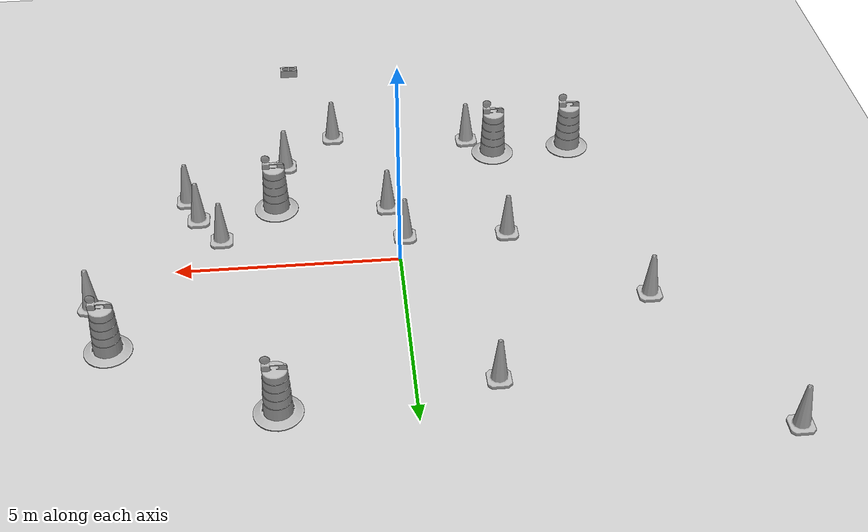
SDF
<sdf version="1.7">
 <world name="default">
  <light name="sun" type="directional">
   <pose>0 0 10 0 -0 0</pose>
   <diffuse>0.8 0.8 0.8 1</diffuse>
   <specular>0.2 0.2 0.2 1</specular>
   <attenuation>
    <range>1000</range>
    <constant>0.9</constant>
    <linear>0.01</linear>
    <quadratic>0.001</quadratic>
   </attenuation>
   <direction>-0.5 0.1 -0.9</direction>
   <spot><inner_angle>0</inner_angle><outer_angle>0</outer_angle><falloff>0</falloff></spot>
  </light>
  <model name="ground_plane">
   <static>1</static>
   <link name="link">
    <collision name="collision">
     <geometry><plane><normal>0 0 1</normal><size>100 100</size></plane></geometry>
     <surface>
      <contact><collide_bitmask>65535</collide_bitmask></contact>
      <friction><ode><mu>100</mu><mu2>50</mu2></ode></friction>
     </surface>
    </collision>
    <visual name="visual">
     <cast_shadows>0</cast_shadows>
     <geometry><plane><normal>0 0 1</normal><size>100 100</size></plane></geometry>
     <material>
      <script><uri>file://media/materials/scripts/gazebo.material</uri><name>Gazebo/Grey</name></script>
     </material>
    </visual>
   </link>
  </model>
  <gravity>0 0 -9.8</gravity>
  <magnetic_field>6e-06 2.3e-05 -4.2e-05</magnetic_field>
  <atmosphere type="adiabatic"/>
  <physics type="ode">
   <max_step_size>0.001</max_step_size>
   <real_time_factor>1</real_time_factor>
   <real_time_update_rate>1000</real_time_update_rate>
  </physics>
  <scene><ambient>0.4 0.4 0.4 1</ambient><background>0.7 0.7 0.7 1</background><shadows>1</shadows></scene>
  <audio><device>default</device></audio>
  <spherical_coordinates>
   <surface_model>EARTH_WGS84</surface_model>
   <latitude_deg>0</latitude_deg>
   <longitude_deg>0</longitude_deg>
   <elevation>0</elevation>
   <heading_deg>0</heading_deg>
  </spherical_coordinates>
  <model name="Construction Cone">
   <link name="link">
    <collision name="collision">
     <geometry>
      <mesh><scale>10 10 10</scale><uri>model://construction_cone/meshes/construction_cone.dae</uri></mesh>
     </geometry>
    </collision>
    <visual name="visual">
     <geometry>
      <mesh><scale>10 10 10</scale><uri>model://construction_cone/meshes/construction_cone.dae</uri></mesh>
     </geometry>
    </visual>
    <inertial>
     <inertia><ixx>1</ixx><ixy>0</ixy><ixz>0</ixz><iyy>1</iyy><iyz>0</iyz><izz>1</izz></inertia>
     <mass>1</mass>
    </inertial>
   </link>
   <pose>0.149287 -1.90198 -0 0 -0 0</pose>
  </model>
  <model name="Construction Barrel">
   <link name="link">
    <inertial>
     <pose>0 0 0.4 0 -0 0</pose>
     <mass>500</mass>
     <inertia><ixx>51.2096</ixx><iyy>51.2096</iyy><izz>25</izz><ixy>0</ixy><ixz>0</ixz><iyz>0</iyz></inertia>
    </inertial>
    <collision name="collision">
     <geometry><mesh><uri>model://construction_barrel/meshes/construction_barrel.dae</uri></mesh></geometry>
    </collision>
    <visual name="visual">
     <geometry><mesh><uri>model://construction_barrel/meshes/construction_barrel.dae</uri></mesh></geometry>
    </visual>
   </link>
   <pose>2.74646 -2.11172 -2e-06 4e-06 7e-06 -2.7e-05</pose>
  </model>
  <model name="cinder_block">
   <link name="link">
    <inertial>
     <pose>0 0 0.1016 0 -0 0</pose>
     <mass>5</mass>
     <inertia>
      <ixx>0.028705</ixx>
      <ixy>0</ixy>
      <iyy>0.073708</iyy>
      <ixz>0</ixz>
      <iyz>0</iyz>
      <izz>0.06908</izz>
     </inertia>
    </inertial>
    <visual name="visual">
     <geometry><mesh><uri>model://cinder_block/meshes/cinder_block.dae</uri></mesh></geometry>
    </visual>
    <collision name="left">
     <pose>0 -0.08465 0.1016 0 -0 0</pose>
     <geometry><box><size>0.43495 0.0339 0.2032</size></box></geometry>
     <surface>
      <contact><ode><max_vel>0.1</max_vel><min_depth>0.001</min_depth></ode></contact>
      <friction><ode><mu>1</mu><mu2>1</mu2></ode></friction>
     </surface>
    </collision>
    <collision name="right">
     <pose>0 0.08465 0.1016 0 -0 0</pose>
     <geometry><box><size>0.43495 0.0339 0.2032</size></box></geometry>
     <surface>
      <contact><ode><max_vel>0.1</max_vel><min_depth>0.001</min_depth></ode></contact>
      <friction><ode><mu>1</mu><mu2>1</mu2></ode></friction>
     </surface>
    </collision>
    <collision name="front">
     <pose>0.18625 0 0.1016 0 -0 0</pose>
     <geometry><box><size>0.0339 0.1354 0.203</size></box></geometry>
     <surface>
      <contact><ode><max_vel>0.1</max_vel><min_depth>0.001</min_depth></ode></contact>
      <friction><ode><mu>1</mu><mu2>1</mu2></ode></friction>
     </surface>
    </collision>
    <collision name="middle">
     <pose>0 0 0.1016 0 -0 0</pose>
     <geometry><box><size>0.0339 0.1354 0.203</size></box></geometry>
     <surface>
      <contact><ode><max_vel>0.1</max_vel><min_depth>0.001</min_depth></ode></contact>
      <friction><ode><mu>1</mu><mu2>1</mu2></ode></friction>
     </surface>
    </collision>
    <collision name="back">
     <pose>-0.18625 0 0.1016 0 -0 0</pose>
     <geometry><box><size>0.0339 0.1354 0.203</size></box></geometry>
     <surface>
      <contact><ode><max_vel>0.1</max_vel><min_depth>0.001</min_depth></ode></contact>
      <friction><ode><mu>1</mu><mu2>1</mu2></ode></friction>
     </surface>
    </collision>
   </link>
   <pose>2.37406 -8.00537 -6e-06 -1e-06 2.8e-05 -0</pose>
  </model>
  <model name="Construction Cone_0">
   <link name="link">
    <collision name="collision">
     <geometry>
      <mesh><scale>10 10 10</scale><uri>model://construction_cone/meshes/construction_cone.dae</uri></mesh>
     </geometry>
    </collision>
    <visual name="visual">
     <geometry>
      <mesh><scale>10 10 10</scale><uri>model://construction_cone/meshes/construction_cone.dae</uri></mesh>
     </geometry>
    </visual>
    <inertial>
     <inertia><ixx>1</ixx><ixy>0</ixy><ixz>0</ixz><iyy>1</iyy><iyz>0</iyz><izz>1</izz></inertia>
     <mass>1</mass>
    </inertial>
   </link>
   <pose>-7.41149 5.84205 -0 0 -1e-06 0</pose>
  </model>
  <model name="Construction Barrel_0">
   <link name="link">
    <inertial>
     <pose>0 0 0.4 0 -0 0</pose>
     <mass>500</mass>
     <inertia><ixx>51.2096</ixx><iyy>51.2096</iyy><izz>25</izz><ixy>0</ixy><ixz>0</ixz><iyz>0</iyz></inertia>
    </inertial>
    <collision name="collision">
     <geometry><mesh><uri>model://construction_barrel/meshes/construction_barrel.dae</uri></mesh></geometry>
    </collision>
    <visual name="visual">
     <geometry><mesh><uri>model://construction_barrel/meshes/construction_barrel.dae</uri></mesh></geometry>
    </visual>
   </link>
   <pose>2.76438 4.52679 -2e-06 6e-06 -3e-06 0.007486</pose>
  </model>
  <model name="Construction Cone_1">
   <link name="link">
    <collision name="collision">
     <geometry>
      <mesh><scale>10 10 10</scale><uri>model://construction_cone/meshes/construction_cone.dae</uri></mesh>
     </geometry>
    </collision>
    <visual name="visual">
     <geometry>
      <mesh><scale>10 10 10</scale><uri>model://construction_cone/meshes/construction_cone.dae</uri></mesh>
     </geometry>
    </visual>
    <inertial>
     <inertia><ixx>1</ixx><ixy>0</ixy><ixz>0</ixz><iyy>1</iyy><iyz>0</iyz><izz>1</izz></inertia>
     <mass>1</mass>
    </inertial>
   </link>
   <pose>-2.51289 -0.682225 -0 0 -1e-06 0</pose>
  </model>
  <model name="Construction Barrel_1">
   <link name="link">
    <inertial>
     <pose>0 0 0.4 0 -0 0</pose>
     <mass>500</mass>
     <inertia><ixx>51.2096</ixx><iyy>51.2096</iyy><izz>25</izz><ixy>0</ixy><ixz>0</ixz><iyz>0</iyz></inertia>
    </inertial>
    <collision name="collision">
     <geometry><mesh><uri>model://construction_barrel/meshes/construction_barrel.dae</uri></mesh></geometry>
    </collision>
    <visual name="visual">
     <geometry><mesh><uri>model://construction_barrel/meshes/construction_barrel.dae</uri></mesh></geometry>
    </visual>
   </link>
   <pose>-2.59454 -3.92508 -0.000972 8e-06 8e-06 0.000153</pose>
  </model>
  <model name="Construction Barrel_2">
   <link name="link">
    <inertial>
     <pose>0 0 0.4 0 -0 0</pose>
     <mass>500</mass>
     <inertia><ixx>51.2096</ixx><iyy>51.2096</iyy><izz>25</izz><ixy>0</ixy><ixz>0</ixz><iyz>0</iyz></inertia>
    </inertial>
    <collision name="collision">
     <geometry><mesh><uri>model://construction_barrel/meshes/construction_barrel.dae</uri></mesh></geometry>
    </collision>
    <visual name="visual">
     <geometry><mesh><uri>model://construction_barrel/meshes/construction_barrel.dae</uri></mesh></geometry>
    </visual>
   </link>
   <pose>-4.47587 -4.03714 -4e-06 -3e-06 -1e-05 -2.2e-05</pose>
  </model>
  <model name="Construction Barrel_3">
   <link name="link">
    <inertial>
     <pose>0 0 0.4 0 -0 0</pose>
     <mass>500</mass>
     <inertia><ixx>51.2096</ixx><iyy>51.2096</iyy><izz>25</izz><ixy>0</ixy><ixz>0</ixz><iyz>0</iyz></inertia>
    </inertial>
    <collision name="collision">
     <geometry><mesh><uri>model://construction_barrel/meshes/construction_barrel.dae</uri></mesh></geometry>
    </collision>
    <visual name="visual">
     <geometry><mesh><uri>model://construction_barrel/meshes/construction_barrel.dae</uri></mesh></geometry>
    </visual>
   </link>
   <pose>6.26986 2.42902 0 0 0 -1.4e-05</pose>
  </model>
  <model name="Construction Cone_clone">
   <link name="link">
    <collision name="collision">
     <geometry>
      <mesh><scale>10 10 10</scale><uri>model://construction_cone/meshes/construction_cone.dae</uri></mesh>
     </geometry>
    </collision>
    <visual name="visual">
     <geometry>
      <mesh><scale>10 10 10</scale><uri>model://construction_cone/meshes/construction_cone.dae</uri></mesh>
     </geometry>
    </visual>
    <inertial>
     <inertia><ixx>1</ixx><ixy>0</ixy><ixz>0</ixz><iyy>1</iyy><iyz>0</iyz><izz>1</izz></inertia>
     <mass>1</mass>
    </inertial>
   </link>
   <pose>4 -1 -1e-05 -1e-06 0 0</pose>
  </model>
  <model name="Construction Cone_clone_0">
   <link name="link">
    <collision name="collision">
     <geometry>
      <mesh><scale>10 10 10</scale><uri>model://construction_cone/meshes/construction_cone.dae</uri></mesh>
     </geometry>
    </collision>
    <visual name="visual">
     <geometry>
      <mesh><scale>10 10 10</scale><uri>model://construction_cone/meshes/construction_cone.dae</uri></mesh>
     </geometry>
    </visual>
    <inertial>
     <inertia><ixx>1</ixx><ixy>0</ixy><ixz>0</ixz><iyy>1</iyy><iyz>0</iyz><izz>1</izz></inertia>
     <mass>1</mass>
    </inertial>
   </link>
   <pose>-1.70003 4.02765 -0 0 -0 0</pose>
  </model>
  <model name="Construction Cone_clone_1">
   <link name="link">
    <collision name="collision">
     <geometry>
      <mesh><scale>10 10 10</scale><uri>model://construction_cone/meshes/construction_cone.dae</uri></mesh>
     </geometry>
    </collision>
    <visual name="visual">
     <geometry>
      <mesh><scale>10 10 10</scale><uri>model://construction_cone/meshes/construction_cone.dae</uri></mesh>
     </geometry>
    </visual>
    <inertial>
     <inertia><ixx>1</ixx><ixy>0</ixy><ixz>0</ixz><iyy>1</iyy><iyz>0</iyz><izz>1</izz></inertia>
     <mass>1</mass>
    </inertial>
   </link>
   <pose>-5.31698 1.71216 -0 0 -1e-06 0</pose>
  </model>
  <model name="Construction Cone_clone_2">
   <link name="link">
    <collision name="collision">
     <geometry>
      <mesh><scale>10 10 10</scale><uri>model://construction_cone/meshes/construction_cone.dae</uri></mesh>
     </geometry>
    </collision>
    <visual name="visual">
     <geometry>
      <mesh><scale>10 10 10</scale><uri>model://construction_cone/meshes/construction_cone.dae</uri></mesh>
     </geometry>
    </visual>
    <inertial>
     <inertia><ixx>1</ixx><ixy>0</ixy><ixz>0</ixz><iyy>1</iyy><iyz>0</iyz><izz>1</izz></inertia>
     <mass>1</mass>
    </inertial>
   </link>
   <pose>-0.16765 -0.767333 -0 1e-06 -0 0</pose>
  </model>
  <model name="Construction Cone_clone_3">
   <link name="link">
    <collision name="collision">
     <geometry>
      <mesh><scale>10 10 10</scale><uri>model://construction_cone/meshes/construction_cone.dae</uri></mesh>
     </geometry>
    </collision>
    <visual name="visual">
     <geometry>
      <mesh><scale>10 10 10</scale><uri>model://construction_cone/meshes/construction_cone.dae</uri></mesh>
     </geometry>
    </visual>
    <inertial>
     <inertia><ixx>1</ixx><ixy>0</ixy><ixz>0</ixz><iyy>1</iyy><iyz>0</iyz><izz>1</izz></inertia>
     <mass>1</mass>
    </inertial>
   </link>
   <pose>6.74212 1.07888 -1e-05 -0 -0 -0.266649</pose>
  </model>
  <model name="Construction Cone_clone_4">
   <link name="link">
    <collision name="collision">
     <geometry>
      <mesh><scale>10 10 10</scale><uri>model://construction_cone/meshes/construction_cone.dae</uri></mesh>
     </geometry>
    </collision>
    <visual name="visual">
     <geometry>
      <mesh><scale>10 10 10</scale><uri>model://construction_cone/meshes/construction_cone.dae</uri></mesh>
     </geometry>
    </visual>
    <inertial>
     <inertia><ixx>1</ixx><ixy>0</ixy><ixz>0</ixz><iyy>1</iyy><iyz>0</iyz><izz>1</izz></inertia>
     <mass>1</mass>
    </inertial>
   </link>
   <pose>4.82512 -2.55677 -0 0 -1e-06 0</pose>
  </model>
  <model name="Construction Cone_clone_5">
   <link name="link">
    <collision name="collision">
     <geometry>
      <mesh><scale>10 10 10</scale><uri>model://construction_cone/meshes/construction_cone.dae</uri></mesh>
     </geometry>
    </collision>
    <visual name="visual">
     <geometry>
      <mesh><scale>10 10 10</scale><uri>model://construction_cone/meshes/construction_cone.dae</uri></mesh>
     </geometry>
    </visual>
    <inertial>
     <inertia><ixx>1</ixx><ixy>0</ixy><ixz>0</ixz><iyy>1</iyy><iyz>0</iyz><izz>1</izz></inertia>
     <mass>1</mass>
    </inertial>
   </link>
   <pose>4.54986 -1.80078 -0 0 -0 0</pose>
  </model>
  <model name="Construction Cone_clone_6">
   <link name="link">
    <collision name="collision">
     <geometry>
      <mesh><scale>10 10 10</scale><uri>model://construction_cone/meshes/construction_cone.dae</uri></mesh>
     </geometry>
    </collision>
    <visual name="visual">
     <geometry>
      <mesh><scale>10 10 10</scale><uri>model://construction_cone/meshes/construction_cone.dae</uri></mesh>
     </geometry>
    </visual>
    <inertial>
     <inertia><ixx>1</ixx><ixy>0</ixy><ixz>0</ixz><iyy>1</iyy><iyz>0</iyz><izz>1</izz></inertia>
     <mass>1</mass>
    </inertial>
   </link>
   <pose>1.32271 -4.88915 -0 0 -1e-06 0</pose>
  </model>
  <model name="Construction Cone_clone_7">
   <link name="link">
    <collision name="collision">
     <geometry>
      <mesh><scale>10 10 10</scale><uri>model://construction_cone/meshes/construction_cone.dae</uri></mesh>
     </geometry>
    </collision>
    <visual name="visual">
     <geometry>
      <mesh><scale>10 10 10</scale><uri>model://construction_cone/meshes/construction_cone.dae</uri></mesh>
     </geometry>
    </visual>
    <inertial>
     <inertia><ixx>1</ixx><ixy>0</ixy><ixz>0</ixz><iyy>1</iyy><iyz>0</iyz><izz>1</izz></inertia>
     <mass>1</mass>
    </inertial>
   </link>
   <pose>2.50957 -3.75044 -0 0 -1e-06 0</pose>
  </model>
  <model name="Construction Cone_clone_8">
   <link name="link">
    <collision name="collision">
     <geometry>
      <mesh><scale>10 10 10</scale><uri>model://construction_cone/meshes/construction_cone.dae</uri></mesh>
     </geometry>
    </collision>
    <visual name="visual">
     <geometry>
      <mesh><scale>10 10 10</scale><uri>model://construction_cone/meshes/construction_cone.dae</uri></mesh>
     </geometry>
    </visual>
    <inertial>
     <inertia><ixx>1</ixx><ixy>0</ixy><ixz>0</ixz><iyy>1</iyy><iyz>0</iyz><izz>1</izz></inertia>
     <mass>1</mass>
    </inertial>
   </link>
   <pose>-1.99957 -4.46865 0.009988 0.023162 0.024057 0.026879</pose>
  </model>
 </world>
</sdf>
